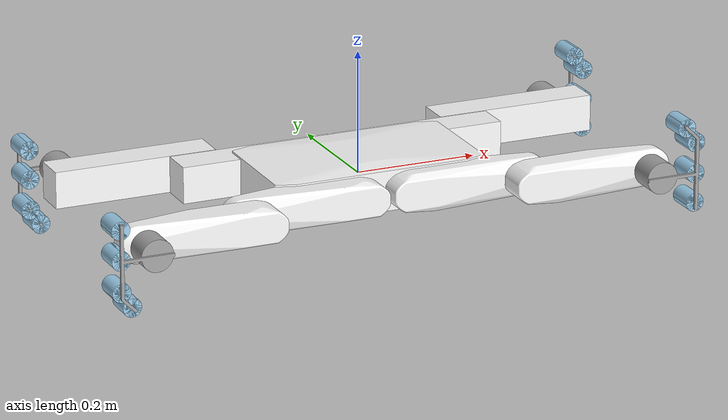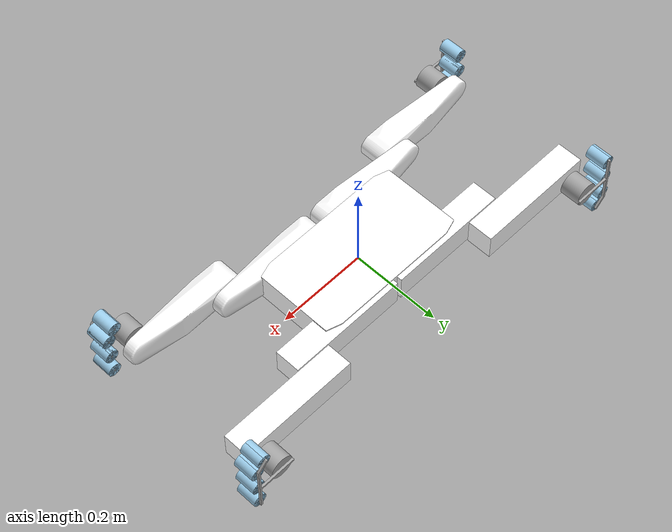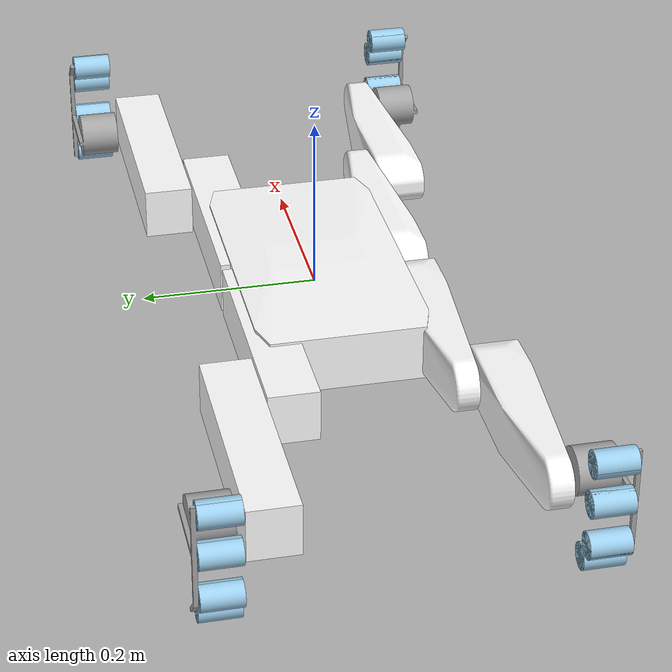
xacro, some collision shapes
<?xml version="1.0"?>

<robot name="traquad" xmlns:xacro="http://ros.org/wiki/xacro">
    <!-- Simplified leg: hip + upper leg only TODO add the tracks -->
    <xacro:macro name="leg" params="prefix gazebo jnt_pref simplify_meshes feet_type">
        <xacro:hip
            prefix="${prefix}"
            gazebo="${gazebo}"
            jnt_pref="${jnt_pref}"
            simplify_meshes="${simplify_meshes}"/>
        <xacro:upper_leg
            prefix="${prefix}"
            gazebo="${gazebo}"
            jnt_pref="${jnt_pref}"
            simplify_meshes="${simplify_meshes}"/>
    </xacro:macro>

    <!-- Vi consiglio di creare xacro con i track e lo includete qui -->
    <xacro:include filename="$(find mulinex_description)/urdf/links.xacro" />
    <xacro:include filename="$(find mulinex_description)/urdf/material.xacro" />
    <xacro:include filename="$(find mulinex_description)/urdf/traquad_hw_ign.xacro" />
    <xacro:include filename="$(find mulinex_description)/urdf/imu_sensor.xacro" />
    <xacro:include filename="$(find mulinex_description)/urdf/lidar_sensor.xacro" />

    <xacro:include filename="$(find mulinex_description)/urdf/track.xacro" />

    <xacro:property name="mulinex_base" value="file://$(find mulinex_description)/meshes//Body.stl" />
    <xacro:arg name="use_gazebo" default="true" />
    <xacro:arg name="mulinex_namespace" default="mulinex"/>
    <xacro:arg name="lidar_3D" default="true"/>
    <xacro:arg name="enable_lidar" default="false"/>
    <xacro:arg name="enable_imu" default="false"/>
    <xacro:arg name="yaml_file" default=""/>

    <xacro:arg name="simplify_meshes_lower_leg" default="true"/>

    <!-- use "normal" if normal feet are used
        use "omni" if omniwheels are used
        use "goat" if goat feet are used
        use "track" if track feet are used -->
    <xacro:arg name="feet_type" default="normal"/>

    <xacro:arg name="jnt_prefix" default="" />
    <xacro:arg name="front_haa" default="0.0" />
    <xacro:arg name="hind_haa" default="0.0" />

    <xacro:arg name="RH_HFE" default="0.0" />
    <xacro:arg name="RH_KFE" default="0.0" />
    <xacro:arg name="RF_HFE" default="0.0" />
    <xacro:arg name="RF_KFE" default="0.0" />

    <xacro:arg name="LH_HFE" default="0.0" />
    <xacro:arg name="LH_KFE" default="0.0" />
    <xacro:arg name="LF_HFE" default="0.0" />
    <xacro:arg name="LF_KFE" default="0.0" />

    <link name="$(arg jnt_prefix)base_link">
        <visual>
            <material name="white" />
            <origin xyz="0 0 0" rpy="0 0 0" />
            <geometry>
                <mesh filename="${mulinex_base}" />
            </geometry>
        </visual>
        <collision>
            <origin xyz="0 0 0" rpy="0 0 0" />
            <geometry>
                <box size="0.353 0.090 0.066" />
            </geometry>
        </collision>
        <inertial>
            <mass value="1.3008737" />
            <origin xyz="-1.4565496e-03 -2.5110071e-03 -4.2484136e-03" rpy="0 0 0" />
            <inertia ixx="4.0762590e-03" ixy="-2.5234809e-05" ixz="-3.2587794e-06"
                iyy="9.2413606e-03" iyz="-8.0660183e-06"
                izz="1.2268730e-02" />
        </inertial>
    </link>

    <gazebo>

        <plugin
            filename="ignition-gazebo-odometry-publisher-system"
            name="ignition::gazebo::systems::OdometryPublisher">
            <dimensions>3</dimensions>
            <odom_publish_frequency>30</odom_publish_frequency>
            <odom_frame>$(arg mulinex_namespace)/gt_odom</odom_frame>
            <robot_base_frame>$(arg mulinex_namespace)/base_link</robot_base_frame>
            <odom_topic>$(arg mulinex_namespace)/gt_odom</odom_topic>
            <tf_topic>$(arg mulinex_namespace)/gt_pose_gazebo</tf_topic>
        </plugin>
    </gazebo>

    <xacro:leg
        prefix="LH"
        gazebo="$(arg use_gazebo)"
        jnt_pref="$(arg jnt_prefix)"
        simplify_meshes="$(arg simplify_meshes_lower_leg)"
        feet_type="$(arg feet_type)"
        />
    <xacro:leg
        prefix="LF"
        gazebo="$(arg use_gazebo)"
        jnt_pref="$(arg jnt_prefix)"
        simplify_meshes="$(arg simplify_meshes_lower_leg)"
        feet_type="$(arg feet_type)"
        />
    <xacro:leg
        prefix="RF"
        gazebo="$(arg use_gazebo)"
        jnt_pref="$(arg jnt_prefix)"
        simplify_meshes="$(arg simplify_meshes_lower_leg)"
        feet_type="$(arg feet_type)"
        />
    <xacro:leg
        prefix="RH"
        gazebo="$(arg use_gazebo)"
        jnt_pref="$(arg jnt_prefix)"
        simplify_meshes="$(arg simplify_meshes_lower_leg)"
        feet_type="$(arg feet_type)"
        />
    <xacro:body_left  name="LH" parent="LH_UPPER_LEG" xyz="-0.19 0.05 0" rpy="1.5708 0 1.5708"/>
    <xacro:body_left  name="LF" parent="LF_UPPER_LEG" xyz="0.19 0.05 0" rpy="-1.5708 0 1.5708"/>
    <xacro:body_right name="RF" parent="RF_UPPER_LEG" xyz="0.19 -0.05 0" rpy="3.14159 0 1.5708"/>
    <xacro:body_right name="RH" parent="RH_UPPER_LEG" xyz="-0.19 -0.05 0" rpy="0 0 1.5708"/>

    <!-- Wheels for each body (4 per leg) -->
    <xacro:wheel name="wheel_1_LH" parent="LH" xyz="0 0.0484 -0.0584" rpy="-6.12323e-17 -1.5708 0"/>
    <xacro:wheel name="wheel_2_LH" parent="LH" xyz="0 1.07779e-16 -0.0584" rpy="-6.12323e-17 -1.5708 0"/>
    <xacro:wheel name="wheel_3_LH" parent="LH" xyz="0 -0.05103 -0.0584" rpy="-6.12323e-17 -1.5708 0"/>
    <xacro:wheel name="wheel_4_LH" parent="LH" xyz="0 -0.07668 -0.0417" rpy="-6.12323e-17 -1.5708 0"/>

    <xacro:wheel name="wheel_1_LF" parent="LF" xyz="0 0.0484 -0.0584" rpy="-6.12323e-17 -1.5708 0"/>
    <xacro:wheel name="wheel_2_LF" parent="LF" xyz="0 1.07779e-16 -0.0584" rpy="-6.12323e-17 -1.5708 0"/>
    <xacro:wheel name="wheel_3_LF" parent="LF" xyz="0 -0.05103 -0.0584" rpy="-6.12323e-17 -1.5708 0"/>
    <xacro:wheel name="wheel_4_LF" parent="LF" xyz="0 -0.07668 -0.0417" rpy="-6.12323e-17 -1.5708 0"/>

    <xacro:wheel name="wheel_1_RF" parent="RF" xyz="2.08167e-17 0.05838 0.04841" rpy="-1.5708 0.992087 -1.5708"/>
    <xacro:wheel name="wheel_2_RF" parent="RF" xyz="0 0.05838 1.10544e-16" rpy="-1.5708 0.967866 -1.5708"/>
    <xacro:wheel name="wheel_3_RF" parent="RF" xyz="-2.08167e-17 0.05838 -0.05103" rpy="-1.5708 0.967866 -1.5708"/>
    <xacro:wheel name="wheel_4_RF" parent="RF" xyz="-3.46945e-17 0.04174 -0.07668" rpy="-1.5708 0.992087 -1.5708"/>

    <xacro:wheel name="wheel_1_RH" parent="RH" xyz="2.08167e-17 0.05838 0.04841" rpy="-1.5708 0.992087 -1.5708"/>
    <xacro:wheel name="wheel_2_RH" parent="RH" xyz="0 0.05838 1.10544e-16" rpy="-1.5708 0.967866 -1.5708"/>
    <xacro:wheel name="wheel_3_RH" parent="RH" xyz="-2.08167e-17 0.05838 -0.05103" rpy="-1.5708 0.967866 -1.5708"/>
    <xacro:wheel name="wheel_4_RH" parent="RH" xyz="-3.46945e-17 0.04174 -0.07668" rpy="-1.5708 0.992087 -1.5708"/>

    <xacro:if value="$(arg enable_imu)">
        <xacro:imu_sensor namespace="$(arg mulinex_namespace)"/>
    </xacro:if>
    <xacro:if value="$(arg enable_lidar)">
        <xacro:lidar_sensor tredi="$(arg lidar_3D)" namespace="$(arg mulinex_namespace)"/>
    </xacro:if>

    <xacro:traquad_ign_hw gazebo="$(arg use_gazebo)" yaml="$(arg yaml_file)"/>
</robot>

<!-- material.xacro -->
<robot xmlns:xacro="http://www.ros.org/wiki/xacro">

  <material name="black">
    <color rgba="0.0 0.0 0.0 1.0"/>
  </material>

  <material name="blue">
    <color rgba="0.0 0.0 0.8 1.0"/>
  </material>

  <material name="green">
    <color rgba="0.0 0.8 0.0 1.0"/>
  </material>

  <material name="grey">
    <color rgba="0.2 0.2 0.2 1.0"/>
  </material>

  <material name="orange">
    <color rgba="${255/255} ${108/255} ${10/255} 1.0"/>
  </material>

  <material name="brown">
    <color rgba="${222/255} ${207/255} ${195/255} 1.0"/>
  </material>

  <material name="red">
    <color rgba="0.8 0.0 0.0 1.0"/>
  </material>

  <material name="white">
    <color rgba="1.0 1.0 1.0 1.0"/>
  </material>

</robot>

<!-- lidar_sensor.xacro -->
<robot xmlns:xacro="http://ros.org/wiki/xacro">

    <xacro:property name="PI" value="3.141592" />

    <xacro:property name="b2l_x" value="0.0" />
    <xacro:property name="b2l_y" value="0.0" />
    <xacro:property name="b2l_z" value="0.065" />
    <xacro:property name="b2l_R" value="0.0" />
    <xacro:property name="b2l_P" value="0.0" />
    <xacro:property name="b2l_Y" value="0.0" />
    <xacro:property name="lidar_mass" value="0.125" />
    <xacro:property name="lidar_len_rad" value="0.0508" />
    <xacro:property name="lidar_len_h" value="0.055" />
    <xacro:include filename="$(find mulinex_description)/urdf/base_inertia.xacro" />

    <xacro:macro name="lidar_sensor" params="tredi namespace">
        <joint name="base2lidar" type="fixed">
            <parent link="base_link"/>
            <child link="lidar_link"/>
            <origin xyz="${b2l_x} ${b2l_y} ${b2l_z}" rpy="${b2l_R} ${b2l_P} ${b2l_Y}"/>
        </joint>
        <link name="lidar_link">
            <collision>
                <origin xyz="0 0 0" rpy="0 0 0"/>
                <geometry>
                    <cylinder radius="${lidar_len_rad}" length="${lidar_len_h}"/>
                </geometry>
            </collision>

            <visual>
                <origin xyz="0 0 0" rpy="0 0 0"/>
                <geometry>
                    <cylinder radius="${lidar_len_rad}" length="${lidar_len_h}"/>
                </geometry>
                <material name="orange"/>
            </visual>

            <xacro:cylinder_inertia m="${lidar_mass}" r="${lidar_len_rad}" h="${lidar_len_h}" dir="z"/>

        </link>
        <gazebo reference="lidar_link">
            <sensor name="RGLsensor" type="custom">
                <plugin filename="RGLServerPluginInstance" name="rgl::RGLServerPluginInstance">
                    <range>
                    <min>0</min>
                    <max>100</max>
                    </range>
                    <update_rate>10</update_rate>
                    <update_on_paused_sim>false</update_on_paused_sim>
                    <topic>${namespace}/rgl_lidar</topic>
                    <frame>${namespace}/lidar_link</frame>
                    <pattern_preset>Puck</pattern_preset>
                </plugin>
            </sensor>
        </gazebo>

    </xacro:macro>

</robot>

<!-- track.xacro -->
<robot xmlns:xacro="http://ros.org/wiki/xacro" name="track">

  <!-- ===================== ARGOMENTI COMUNI ===================== -->
  <xacro:property name="wheel_mass" default="0.1"/>
  <xacro:property name="wheel_ixx" default="2.26562e-05"/>
  <xacro:property name="wheel_iyy" default="2.26562e-05"/>
  <xacro:property name="wheel_izz" default="1.15625e-05"/>
  <xacro:property name="wheel_mesh" default="file://$(find mulinex_description)/meshes//wheel.stl"/>

  <xacro:property name="body_mass" value="0.6"/>
  <xacro:property name="body_left_mesh" default="file://$(find mulinex_description)/meshes//body_left.stl"/>
  <xacro:property name="body_right_mesh" default="file://$(find mulinex_description)/meshes//body_right.stl"/>

  <!-- ===================== MACRO ===================== -->

  <!-- Macro RUOTA -->
  <xacro:macro name="wheel" params="name parent xyz rpy">
    <link name="${name}">
      <inertial>
        <origin xyz="0 0 -0.0225" rpy="0 0 0"/>
        <mass value="${wheel_mass}"/>
        <inertia ixx="${wheel_ixx}" ixy="0" ixz="0"
                 iyy="${wheel_iyy}" iyz="0" izz="${wheel_izz}"/>
      </inertial>
      <visual>
        <origin xyz="0 0 -0.045" rpy="-1.5708 -1.5708 0"/>
        <geometry>
          <mesh filename="${wheel_mesh}"/>
        </geometry>
        <material name="${name}_material">
          <color rgba="0.615686 0.811765 0.929412 1"/>
        </material>
      </visual>
      <collision>
        <origin xyz="0 0 -0.045" rpy="-1.5708 -1.5708 0"/>
        <geometry>
          <mesh filename="${wheel_mesh}"/>
        </geometry>
      </collision>
    </link>

    <joint name="joint_${name}" type="continuous">
      <origin xyz="${xyz}" rpy="${rpy}"/>
      <parent link="${parent}"/>
      <child link="${name}"/>
      <axis xyz="0 0 1"/>
      <limit effort="10" velocity="100000"/>
    </joint>
  </xacro:macro>

  <!-- Macro CORPO LEFT -->
  <xacro:macro name="body_left" params="name parent xyz rpy">
    <joint name="${name}_ankle" type="revolute">
      <origin xyz="${xyz}" rpy="${rpy}"/>
      <parent link="${parent}"/>
      <child link="${name}"/>
      <axis xyz="1 0 0"/>
      <limit effort="10" velocity="10" lower="-3.14159" upper="3.14159"/>
    </joint>

    <link name="${name}">
      <inertial>
        <origin xyz="0.0238777 -0.00119624 -0.00412068" rpy="0 0 0"/>
        <mass value="${body_mass}"/>
        <inertia ixx="0.000408384" ixy="6.93353e-06" ixz="3.09979e-05"
                 iyy="0.000335218" iyz="-2.90084e-05" izz="0.000303698"/>
      </inertial>
      <visual>
        <origin xyz="0 0 0" rpy="0 0 3.14159"/>
        <geometry>
          <mesh filename="${body_left_mesh}"/>
        </geometry>
        <material name="${name}_material">
          <color rgba="0.647059 0.647059 0.647059 1"/>
        </material>
      </visual>
      <collision>
        <origin xyz="0 0 0" rpy="0 0 3.14159"/>
        <geometry>
          <mesh filename="${body_left_mesh}"/>
        </geometry>
      </collision>
    </link>
  </xacro:macro>

  <!-- Macro CORPO RIGHT -->
  <xacro:macro name="body_right" params="name parent xyz rpy">
    <joint name="${name}_ankle" type="revolute">
      <origin xyz="${xyz}" rpy="${rpy}"/>
      <parent link="${parent}"/>
      <child link="${name}"/>
      <axis xyz="1 0 0"/>
      <limit effort="10" velocity="10" lower="-3.14159" upper="3.14159"/>
    </joint>

    <link name="${name}">
      <inertial>
        <origin xyz="-0.0238777 0.00412068 -0.00119624" rpy="0 0 0"/>
        <mass value="${body_mass}"/>
        <inertia ixx="0.000408384" ixy="3.09979e-05" ixz="-6.93353e-06"
                 iyy="0.000303698" iyz="2.90084e-05" izz="0.000335218"/>
      </inertial>
      <visual>
        <origin xyz="0 0 0" rpy="-1.5708 0 -3.14159"/>
        <geometry>
          <mesh filename="${body_right_mesh}"/>
        </geometry>
        <material name="${name}_material">
          <color rgba="0.647059 0.647059 0.647059 1"/>
        </material>
      </visual>
      <collision>
        <origin xyz="0 0 0" rpy="-1.5708 0 -3.14159"/>
        <geometry>
          <mesh filename="${body_right_mesh}"/>
        </geometry>
      </collision>
    </link>
  </xacro:macro>

  <!-- ===================== INSTANZE CORPI & RUOTE ===================== -->

  <!-- LEFT_H -->
  <xacro:body_left name="body_left_H" parent="LH_UPPER_LEG"
                   xyz="-0.19 0.05 0" rpy="1.5708 0 1.5708"/>
  <xacro:wheel name="wheel_1_LEFT_H" parent="body_left_H" xyz="0 0.0484063 -0.0583795" rpy="-6.12323e-17 -1.5708 0"/>
  <xacro:wheel name="wheel_2_LEFT_H" parent="body_left_H" xyz="0 1.07779e-16 -0.0583795" rpy="-6.12323e-17 -1.5708 0"/>
  <xacro:wheel name="wheel_3_LEFT_H" parent="body_left_H" xyz="0 -0.0510313 -0.0583795" rpy="-6.12323e-17 -1.5708 0"/>
  <xacro:wheel name="wheel_4_LEFT_H" parent="body_left_H" xyz="0 -0.0766777 -0.0417374" rpy="-6.12323e-17 -1.5708 0"/>

  <!-- LEFT_F -->
  <xacro:body_left name="body_left_F" parent="LF_UPPER_LEG"
                   xyz="0.19 0.05 0" rpy="-1.5708 0 1.5708"/>
  <xacro:wheel name="wheel_1_LEFT_F" parent="body_left_F" xyz="0 0.0484063 -0.0583795" rpy="-6.12323e-17 -1.5708 0"/>
  <xacro:wheel name="wheel_2_LEFT_F" parent="body_left_F" xyz="0 1.07779e-16 -0.0583795" rpy="-6.12323e-17 -1.5708 0"/>
  <xacro:wheel name="wheel_3_LEFT_F" parent="body_left_F" xyz="0 -0.0510313 -0.0583795" rpy="-6.12323e-17 -1.5708 0"/>
  <xacro:wheel name="wheel_4_LEFT_F" parent="body_left_F" xyz="0 -0.0766777 -0.0417374" rpy="-6.12323e-17 -1.5708 0"/>

  <!-- RIGHT_F -->
  <xacro:body_right name="body_right_F" parent="RF_UPPER_LEG"
                    xyz="0.19 -0.05 0" rpy="3.14159 0 1.5708"/>
  <xacro:wheel name="wheel_1_RIGHT_F" parent="body_right_F" xyz="2.08167e-17 0.0583795 0.0484062" rpy="-1.5708 0.992087 -1.5708"/>
  <xacro:wheel name="wheel_2_RIGHT_F" parent="body_right_F" xyz="0 0.0583795 1.10544e-16" rpy="-1.5708 0.967866 -1.5708"/>
  <xacro:wheel name="wheel_3_RIGHT_F" parent="body_right_F" xyz="-2.08167e-17 0.0583795 -0.0510312" rpy="-1.5708 0.967866 -1.5708"/>
  <xacro:wheel name="wheel_4_RIGHT_F" parent="body_right_F" xyz="-3.46945e-17 0.0417374 -0.0766777" rpy="-1.5708 0.992087 -1.5708"/>

  <!-- RIGHT_H -->
  <xacro:body_right name="body_right_H" parent="RH_UPPER_LEG"
                    xyz="-0.19 -0.05 0" rpy="0 0 1.5708"/>
  <xacro:wheel name="wheel_1_RIGHT_H" parent="body_right_H" xyz="2.08167e-17 0.0583795 0.0484062" rpy="-1.5708 0.992087 -1.5708"/>
  <xacro:wheel name="wheel_2_RIGHT_H" parent="body_right_H" xyz="0 0.0583795 1.10544e-16" rpy="-1.5708 0.967866 -1.5708"/>
  <xacro:wheel name="wheel_3_RIGHT_H" parent="body_right_H" xyz="-2.08167e-17 0.0583795 -0.0510312" rpy="-1.5708 0.967866 -1.5708"/>
  <xacro:wheel name="wheel_4_RIGHT_H" parent="body_right_H" xyz="-3.46945e-17 0.0417374 -0.0766777" rpy="-1.5708 0.992087 -1.5708"/>

</robot>
